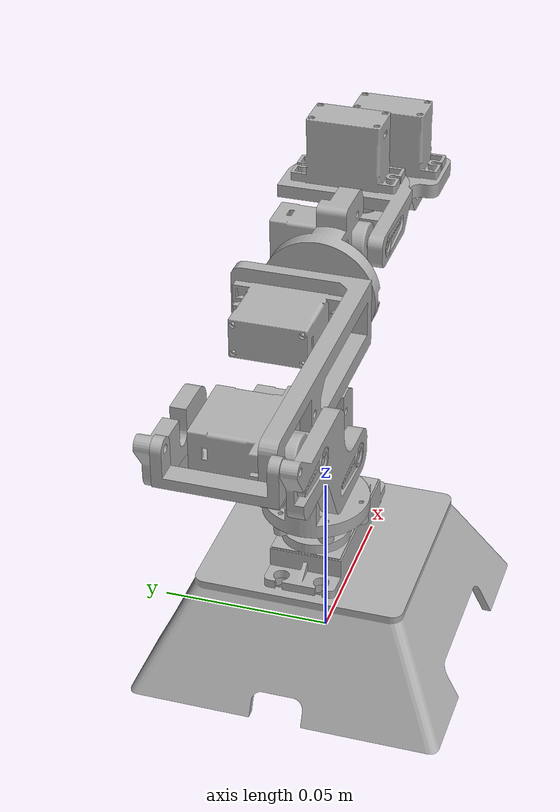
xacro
<?xml version="1.0" ?>
<robot name="serpens_urdf" xmlns:xacro="http://www.ros.org/wiki/xacro">

<xacro:include filename="$(find serpens_urdf_description)/urdf/materials.xacro" />
<xacro:include filename="$(find serpens_urdf_description)/urdf/serpens_urdf.trans" />
<xacro:include filename="$(find serpens_urdf_description)/urdf/serpens_urdf.gazebo" />
<link name="base_link">
  <inertial>
    <origin rpy="0 0 0" xyz="0.00027997054451526365 -0.00019064006265276712 0.01910383815728144"/>
    <mass value="0.20475393508704573"/>
    <inertia ixx="0.000171" ixy="-0.0" ixz="1e-06" iyy="0.000189" iyz="-0.0" izz="0.000318"/>
  </inertial>
  <visual>
    <origin rpy="0 0 0" xyz="0 0 0"/>
    <geometry>
      <mesh filename="package://serpens_urdf_description/meshes/base_link.stl" scale="0.001 0.001 0.001"/>
    </geometry>
    <material name="silver"/>
  </visual>
  <collision>
    <origin rpy="0 0 0" xyz="0 0 0"/>
    <geometry>
      <mesh filename="package://serpens_urdf_description/meshes/base_link.stl" scale="0.001 0.001 0.001"/>
    </geometry>
  </collision>
</link>

<link name="servo0_1">
  <inertial>
    <origin rpy="0 0 0" xyz="0.023817699282545974 0.005749900442354143 -0.007871453326593378"/>
    <mass value="0.2555130258740541"/>
    <inertia ixx="3.9e-05" ixy="0.0" ixz="1e-06" iyy="6.8e-05" iyz="-0.0" izz="4.6e-05"/>
  </inertial>
  <visual>
    <origin rpy="0 0 0" xyz="0.024173 0.005926 -0.0325"/>
    <geometry>
      <mesh filename="package://serpens_urdf_description/meshes/servo0_1.stl" scale="0.001 0.001 0.001"/>
    </geometry>
    <material name="silver"/>
  </visual>
  <collision>
    <origin rpy="0 0 0" xyz="0.024173 0.005926 -0.0325"/>
    <geometry>
      <mesh filename="package://serpens_urdf_description/meshes/servo0_1.stl" scale="0.001 0.001 0.001"/>
    </geometry>
  </collision>
</link>

<link name="arm_servo0_1">
  <inertial>
    <origin rpy="0 0 0" xyz="2.645961693498178e-07 -9.955764881182556e-08 0.0008643613928907903"/>
    <mass value="0.00700497380911204"/>
    <inertia ixx="0.0" ixy="0.0" ixz="0.0" iyy="0.0" iyz="0.0" izz="1e-06"/>
  </inertial>
  <visual>
    <origin rpy="0 0 0" xyz="0.010373 0.000176 -0.0482"/>
    <geometry>
      <mesh filename="package://serpens_urdf_description/meshes/arm_servo0_1.stl" scale="0.001 0.001 0.001"/>
    </geometry>
    <material name="silver"/>
  </visual>
  <collision>
    <origin rpy="0 0 0" xyz="0.010373 0.000176 -0.0482"/>
    <geometry>
      <mesh filename="package://serpens_urdf_description/meshes/arm_servo0_1.stl" scale="0.001 0.001 0.001"/>
    </geometry>
  </collision>
</link>

<link name="link1_1">
  <inertial>
    <origin rpy="0 0 0" xyz="-9.790643557111567e-05 0.016623975091317883 0.01144673390169567"/>
    <mass value="0.052371181806792864"/>
    <inertia ixx="9e-06" ixy="0.0" ixz="0.0" iyy="1e-05" iyz="-1e-06" izz="1.1e-05"/>
  </inertial>
  <visual>
    <origin rpy="0 0 0" xyz="0.010373 0.013276 -0.0505"/>
    <geometry>
      <mesh filename="package://serpens_urdf_description/meshes/link1_1.stl" scale="0.001 0.001 0.001"/>
    </geometry>
    <material name="silver"/>
  </visual>
  <collision>
    <origin rpy="0 0 0" xyz="0.010373 0.013276 -0.0505"/>
    <geometry>
      <mesh filename="package://serpens_urdf_description/meshes/link1_1.stl" scale="0.001 0.001 0.001"/>
    </geometry>
  </collision>
</link>

<link name="servo1_1">
  <inertial>
    <origin rpy="0 0 0" xyz="-0.01924973540421095 -0.009270639450617364 2.0469669471945284e-07"/>
    <mass value="0.00045126850039796834"/>
    <inertia ixx="0.0" ixy="-0.0" ixz="0.0" iyy="0.0" iyz="0.0" izz="0.0"/>
  </inertial>
  <visual>
    <origin rpy="0 0 0" xyz="-0.003527 0.000676 -0.0739"/>
    <geometry>
      <mesh filename="package://serpens_urdf_description/meshes/servo1_1.stl" scale="0.001 0.001 0.001"/>
    </geometry>
    <material name="silver"/>
  </visual>
  <collision>
    <origin rpy="0 0 0" xyz="-0.003527 0.000676 -0.0739"/>
    <geometry>
      <mesh filename="package://serpens_urdf_description/meshes/servo1_1.stl" scale="0.001 0.001 0.001"/>
    </geometry>
  </collision>
</link>

<link name="arm_servo1_1">
  <inertial>
    <origin rpy="0 0 0" xyz="-0.0039290744024541024 -0.0006862988025785107 -7.223509433662567e-07"/>
    <mass value="0.0016195799801192233"/>
    <inertia ixx="0.0" ixy="-0.0" ixz="-0.0" iyy="0.0" iyz="-0.0" izz="0.0"/>
  </inertial>
  <visual>
    <origin rpy="0 0 0" xyz="0.015723 0.011676 -0.0739"/>
    <geometry>
      <mesh filename="package://serpens_urdf_description/meshes/arm_servo1_1.stl" scale="0.001 0.001 0.001"/>
    </geometry>
    <material name="silver"/>
  </visual>
  <collision>
    <origin rpy="0 0 0" xyz="0.015723 0.011676 -0.0739"/>
    <geometry>
      <mesh filename="package://serpens_urdf_description/meshes/arm_servo1_1.stl" scale="0.001 0.001 0.001"/>
    </geometry>
  </collision>
</link>

<link name="servo2_1">
  <inertial>
    <origin rpy="0 0 0" xyz="2.645957888972039e-07 0.0017293602141066084 2.0469669428924142e-07"/>
    <mass value="0.00045126850039796834"/>
    <inertia ixx="0.0" ixy="-0.0" ixz="0.0" iyy="0.0" iyz="0.0" izz="0.0"/>
  </inertial>
  <visual>
    <origin rpy="0 0 0" xyz="0.048223 0.011676 -0.0939"/>
    <geometry>
      <mesh filename="package://serpens_urdf_description/meshes/servo2_1.stl" scale="0.001 0.001 0.001"/>
    </geometry>
    <material name="silver"/>
  </visual>
  <collision>
    <origin rpy="0 0 0" xyz="0.048223 0.011676 -0.0939"/>
    <geometry>
      <mesh filename="package://serpens_urdf_description/meshes/servo2_1.stl" scale="0.001 0.001 0.001"/>
    </geometry>
  </collision>
</link>

<link name="link3_1">
  <inertial>
    <origin rpy="0 0 0" xyz="0.06536869760284404 -0.07603706493312537 -0.000654465729437087"/>
    <mass value="0.052330263297845014"/>
    <inertia ixx="9e-06" ixy="-8e-06" ixz="-0.0" iyy="4.4e-05" iyz="-0.0" izz="4.7e-05"/>
  </inertial>
  <visual>
    <origin rpy="0 0 0" xyz="0.07282 -0.077879 -0.094576"/>
    <geometry>
      <mesh filename="package://serpens_urdf_description/meshes/link3_1.stl" scale="0.001 0.001 0.001"/>
    </geometry>
    <material name="silver"/>
  </visual>
  <collision>
    <origin rpy="0 0 0" xyz="0.07282 -0.077879 -0.094576"/>
    <geometry>
      <mesh filename="package://serpens_urdf_description/meshes/link3_1.stl" scale="0.001 0.001 0.001"/>
    </geometry>
  </collision>
</link>

<link name="servo3_1">
  <inertial>
    <origin rpy="0 0 0" xyz="0.00927080416384779 0.008499899885857554 2.050532693920193e-07"/>
    <mass value="0.00045126850039796834"/>
    <inertia ixx="0.0" ixy="0.0" ixz="0.0" iyy="0.0" iyz="0.0" izz="0.0"/>
  </inertial>
  <visual>
    <origin rpy="0 0 0" xyz="-0.020777 -0.002824 -0.0939"/>
    <geometry>
      <mesh filename="package://serpens_urdf_description/meshes/servo3_1.stl" scale="0.001 0.001 0.001"/>
    </geometry>
    <material name="silver"/>
  </visual>
  <collision>
    <origin rpy="0 0 0" xyz="-0.020777 -0.002824 -0.0939"/>
    <geometry>
      <mesh filename="package://serpens_urdf_description/meshes/servo3_1.stl" scale="0.001 0.001 0.001"/>
    </geometry>
  </collision>
</link>

<link name="arm_servo3_1">
  <inertial>
    <origin rpy="0 0 0" xyz="0.0006864635158244023 -0.0039294391123699856 -7.220197437290965e-07"/>
    <mass value="0.0016195799801192233"/>
    <inertia ixx="0.0" ixy="0.0" ixz="0.0" iyy="0.0" iyz="-0.0" izz="0.0"/>
  </inertial>
  <visual>
    <origin rpy="0 0 0" xyz="-0.031777 -0.011324 -0.0939"/>
    <geometry>
      <mesh filename="package://serpens_urdf_description/meshes/arm_servo3_1.stl" scale="0.001 0.001 0.001"/>
    </geometry>
    <material name="silver"/>
  </visual>
  <collision>
    <origin rpy="0 0 0" xyz="-0.031777 -0.011324 -0.0939"/>
    <geometry>
      <mesh filename="package://serpens_urdf_description/meshes/arm_servo3_1.stl" scale="0.001 0.001 0.001"/>
    </geometry>
  </collision>
</link>

<link name="link4_1">
  <inertial>
    <origin rpy="0 0 0" xyz="0.0056804347817446185 -7.934130093111003e-06 1.54334066774231e-05"/>
    <mass value="0.05614897602426228"/>
    <inertia ixx="1e-05" ixy="0.0" ixz="-0.0" iyy="1.2e-05" iyz="0.0" izz="7e-06"/>
  </inertial>
  <visual>
    <origin rpy="0 0 0" xyz="-0.031777 -0.011324 -0.0939"/>
    <geometry>
      <mesh filename="package://serpens_urdf_description/meshes/link4_1.stl" scale="0.001 0.001 0.001"/>
    </geometry>
    <material name="silver"/>
  </visual>
  <collision>
    <origin rpy="0 0 0" xyz="-0.031777 -0.011324 -0.0939"/>
    <geometry>
      <mesh filename="package://serpens_urdf_description/meshes/link4_1.stl" scale="0.001 0.001 0.001"/>
    </geometry>
  </collision>
</link>

<link name="servo4_1">
  <inertial>
    <origin rpy="0 0 0" xyz="2.6339035470029915e-07 -0.009270492412655196 0.019250114442996666"/>
    <mass value="0.00045126850039796834"/>
    <inertia ixx="0.0" ixy="0.0" ixz="-0.0" iyy="0.0" iyz="0.0" izz="0.0"/>
  </inertial>
  <visual>
    <origin rpy="0 0 0" xyz="-0.053677 -0.010835 -0.080045"/>
    <geometry>
      <mesh filename="package://serpens_urdf_description/meshes/servo4_1.stl" scale="0.001 0.001 0.001"/>
    </geometry>
    <material name="silver"/>
  </visual>
  <collision>
    <origin rpy="0 0 0" xyz="-0.053677 -0.010835 -0.080045"/>
    <geometry>
      <mesh filename="package://serpens_urdf_description/meshes/servo4_1.stl" scale="0.001 0.001 0.001"/>
    </geometry>
  </collision>
</link>

<link name="arm_servo4_1">
  <inertial>
    <origin rpy="0 0 0" xyz="0.00392960234841027 -0.000686151830518091 1.041409335461596e-06"/>
    <mass value="0.0016195799801192233"/>
    <inertia ixx="0.0" ixy="0.0" ixz="-0.0" iyy="0.0" iyz="0.0" izz="0.0"/>
  </inertial>
  <visual>
    <origin rpy="0 0 0" xyz="-0.053677 0.000165 -0.099295"/>
    <geometry>
      <mesh filename="package://serpens_urdf_description/meshes/arm_servo4_1.stl" scale="0.001 0.001 0.001"/>
    </geometry>
    <material name="silver"/>
  </visual>
  <collision>
    <origin rpy="0 0 0" xyz="-0.053677 0.000165 -0.099295"/>
    <geometry>
      <mesh filename="package://serpens_urdf_description/meshes/arm_servo4_1.stl" scale="0.001 0.001 0.001"/>
    </geometry>
  </collision>
</link>

<link name="link5_1">
  <inertial>
    <origin rpy="0 0 0" xyz="0.020481687369747995 0.011884026774419732 0.002024324960307536"/>
    <mass value="0.020068502995894605"/>
    <inertia ixx="4e-06" ixy="-1e-06" ixz="-0.0" iyy="3e-06" iyz="-0.0" izz="6e-06"/>
  </inertial>
  <visual>
    <origin rpy="0 0 0" xyz="-0.053677 0.000165 -0.099295"/>
    <geometry>
      <mesh filename="package://serpens_urdf_description/meshes/link5_1.stl" scale="0.001 0.001 0.001"/>
    </geometry>
    <material name="silver"/>
  </visual>
  <collision>
    <origin rpy="0 0 0" xyz="-0.053677 0.000165 -0.099295"/>
    <geometry>
      <mesh filename="package://serpens_urdf_description/meshes/link5_1.stl" scale="0.001 0.001 0.001"/>
    </geometry>
  </collision>
</link>

<link name="servo5_1">
  <inertial>
    <origin rpy="0 0 0" xyz="2.635709100834438e-07 0.008500047815705996 -0.009270424944507055"/>
    <mass value="0.00045126850039796834"/>
    <inertia ixx="0.0" ixy="0.0" ixz="0.0" iyy="0.0" iyz="-0.0" izz="0.0"/>
  </inertial>
  <visual>
    <origin rpy="0 0 0" xyz="-0.081177 -0.003835 -0.104295"/>
    <geometry>
      <mesh filename="package://serpens_urdf_description/meshes/servo5_1.stl" scale="0.001 0.001 0.001"/>
    </geometry>
    <material name="silver"/>
  </visual>
  <collision>
    <origin rpy="0 0 0" xyz="-0.081177 -0.003835 -0.104295"/>
    <geometry>
      <mesh filename="package://serpens_urdf_description/meshes/servo5_1.stl" scale="0.001 0.001 0.001"/>
    </geometry>
  </collision>
</link>

<link name="arm_servo_5_1">
  <inertial>
    <origin rpy="0 0 0" xyz="0.003929602569445717 -8.792165034684357e-07 -0.0006860842964992453"/>
    <mass value="0.0016195799801192233"/>
    <inertia ixx="0.0" ixy="0.0" ixz="0.0" iyy="0.0" iyz="-0.0" izz="0.0"/>
  </inertial>
  <visual>
    <origin rpy="0 0 0" xyz="-0.081177 -0.012335 -0.093295"/>
    <geometry>
      <mesh filename="package://serpens_urdf_description/meshes/arm_servo_5_1.stl" scale="0.001 0.001 0.001"/>
    </geometry>
    <material name="silver"/>
  </visual>
  <collision>
    <origin rpy="0 0 0" xyz="-0.081177 -0.012335 -0.093295"/>
    <geometry>
      <mesh filename="package://serpens_urdf_description/meshes/arm_servo_5_1.stl" scale="0.001 0.001 0.001"/>
    </geometry>
  </collision>
</link>

<link name="tool_link_1">
  <inertial>
    <origin rpy="0 0 0" xyz="0.01780176309287465 6.511303609289115e-05 -0.00020166685008318752"/>
    <mass value="0.029560890763662143"/>
    <inertia ixx="3e-06" ixy="0.0" ixz="0.0" iyy="6e-06" iyz="0.0" izz="8e-06"/>
  </inertial>
  <visual>
    <origin rpy="0 0 0" xyz="-0.081177 -0.012335 -0.093295"/>
    <geometry>
      <mesh filename="package://serpens_urdf_description/meshes/tool_link_1.stl" scale="0.001 0.001 0.001"/>
    </geometry>
    <material name="silver"/>
  </visual>
  <collision>
    <origin rpy="0 0 0" xyz="-0.081177 -0.012335 -0.093295"/>
    <geometry>
      <mesh filename="package://serpens_urdf_description/meshes/tool_link_1.stl" scale="0.001 0.001 0.001"/>
    </geometry>
  </collision>
</link>

<link name="servo_tool_1">
  <inertial>
    <origin rpy="0 0 0" xyz="-9.256212421537846e-09 0.019250047468511194 -0.009270423806164524"/>
    <mass value="0.00045126850039796834"/>
    <inertia ixx="0.0" ixy="0.0" ixz="0.0" iyy="0.0" iyz="-0.0" izz="0.0"/>
  </inertial>
  <visual>
    <origin rpy="0 0 0" xyz="-0.110925 0.001665 -0.095295"/>
    <geometry>
      <mesh filename="package://serpens_urdf_description/meshes/servo_tool_1.stl" scale="0.001 0.001 0.001"/>
    </geometry>
    <material name="silver"/>
  </visual>
  <collision>
    <origin rpy="0 0 0" xyz="-0.110925 0.001665 -0.095295"/>
    <geometry>
      <mesh filename="package://serpens_urdf_description/meshes/servo_tool_1.stl" scale="0.001 0.001 0.001"/>
    </geometry>
  </collision>
</link>

<link name="arm_servo_tool_1">
  <inertial>
    <origin rpy="0 0 0" xyz="0.003929329742322976 -8.795643143579002e-07 -0.0006860831581567695"/>
    <mass value="0.0016195799801192233"/>
    <inertia ixx="0.0" ixy="0.0" ixz="0.0" iyy="0.0" iyz="-0.0" izz="0.0"/>
  </inertial>
  <visual>
    <origin rpy="0 0 0" xyz="-0.110925 -0.017585 -0.084295"/>
    <geometry>
      <mesh filename="package://serpens_urdf_description/meshes/arm_servo_tool_1.stl" scale="0.001 0.001 0.001"/>
    </geometry>
    <material name="silver"/>
  </visual>
  <collision>
    <origin rpy="0 0 0" xyz="-0.110925 -0.017585 -0.084295"/>
    <geometry>
      <mesh filename="package://serpens_urdf_description/meshes/arm_servo_tool_1.stl" scale="0.001 0.001 0.001"/>
    </geometry>
  </collision>
</link>

<link name="eef_1">
  <inertial>
    <origin rpy="0 0 0" xyz="0.008030113259992464 0.00017606001763305432 -0.005190207434945443"/>
    <mass value="0.0042424747703085006"/>
    <inertia ixx="0.0" ixy="-0.0" ixz="0.0" iyy="0.0" iyz="0.0" izz="0.0"/>
  </inertial>
  <visual>
    <origin rpy="0 0 0" xyz="-0.100925 -0.006335 -0.090795"/>
    <geometry>
      <mesh filename="package://serpens_urdf_description/meshes/eef_1.stl" scale="0.001 0.001 0.001"/>
    </geometry>
    <material name="silver"/>
  </visual>
  <collision>
    <origin rpy="0 0 0" xyz="-0.100925 -0.006335 -0.090795"/>
    <geometry>
      <mesh filename="package://serpens_urdf_description/meshes/eef_1.stl" scale="0.001 0.001 0.001"/>
    </geometry>
  </collision>
</link>

<link name="link2_1">
  <inertial>
    <origin rpy="0 0 0" xyz="-0.023625589654931854 -0.00015143117739204424 0.011801987665074148"/>
    <mass value="0.03060812881042512"/>
    <inertia ixx="3e-06" ixy="0.0" ixz="3e-06" iyy="1e-05" iyz="0.0" izz="7e-06"/>
  </inertial>
  <visual>
    <origin rpy="0 0 0" xyz="0.015723 0.011676 -0.0739"/>
    <geometry>
      <mesh filename="package://serpens_urdf_description/meshes/link2_1.stl" scale="0.001 0.001 0.001"/>
    </geometry>
    <material name="silver"/>
  </visual>
  <collision>
    <origin rpy="0 0 0" xyz="0.015723 0.011676 -0.0739"/>
    <geometry>
      <mesh filename="package://serpens_urdf_description/meshes/link2_1.stl" scale="0.001 0.001 0.001"/>
    </geometry>
  </collision>
</link>

<link name="arm_servo2_1">
  <inertial>
    <origin rpy="0 0 0" xyz="-0.00392907440245404 -0.0006862991378545642 -7.223509438936127e-07"/>
    <mass value="0.0016195799801192233"/>
    <inertia ixx="0.0" ixy="-0.0" ixz="-0.0" iyy="0.0" iyz="-0.0" izz="0.0"/>
  </inertial>
  <visual>
    <origin rpy="0 0 0" xyz="0.048223 0.011676 -0.0939"/>
    <geometry>
      <mesh filename="package://serpens_urdf_description/meshes/arm_servo2_1.stl" scale="0.001 0.001 0.001"/>
    </geometry>
    <material name="silver"/>
  </visual>
  <collision>
    <origin rpy="0 0 0" xyz="0.048223 0.011676 -0.0939"/>
    <geometry>
      <mesh filename="package://serpens_urdf_description/meshes/arm_servo2_1.stl" scale="0.001 0.001 0.001"/>
    </geometry>
  </collision>
</link>

<link name="link3_2_1">
  <inertial>
    <origin rpy="0 0 0" xyz="1.4333935584587287e-06 0.016499900772567994 -0.00644320390643148"/>
    <mass value="0.007090930359163667"/>
    <inertia ixx="1e-06" ixy="-0.0" ixz="0.0" iyy="0.0" iyz="-0.0" izz="1e-06"/>
  </inertial>
  <visual>
    <origin rpy="0 0 0" xyz="0.068223 0.009676 -0.1039"/>
    <geometry>
      <mesh filename="package://serpens_urdf_description/meshes/link3_2_1.stl" scale="0.001 0.001 0.001"/>
    </geometry>
    <material name="silver"/>
  </visual>
  <collision>
    <origin rpy="0 0 0" xyz="0.068223 0.009676 -0.1039"/>
    <geometry>
      <mesh filename="package://serpens_urdf_description/meshes/link3_2_1.stl" scale="0.001 0.001 0.001"/>
    </geometry>
  </collision>
</link>

<link name="link2_pair_1">
  <inertial>
    <origin rpy="0 0 0" xyz="0.028812952511745295 0.002249900962215688 -0.017756131216635412"/>
    <mass value="0.03005223787841536"/>
    <inertia ixx="3e-06" ixy="-0.0" ixz="3e-06" iyy="1e-05" iyz="0.0" izz="7e-06"/>
  </inertial>
  <visual>
    <origin rpy="0 0 0" xyz="0.068223 -0.023324 -0.1039"/>
    <geometry>
      <mesh filename="package://serpens_urdf_description/meshes/link2_pair_1.stl" scale="0.001 0.001 0.001"/>
    </geometry>
    <material name="silver"/>
  </visual>
  <collision>
    <origin rpy="0 0 0" xyz="0.068223 -0.023324 -0.1039"/>
    <geometry>
      <mesh filename="package://serpens_urdf_description/meshes/link2_pair_1.stl" scale="0.001 0.001 0.001"/>
    </geometry>
  </collision>
</link>

<joint name="f1" type="fixed">
  <origin rpy="0 0 0" xyz="-0.024173 -0.005926 0.0325"/>
  <parent link="base_link"/>
  <child link="servo0_1"/>
</joint>

<joint name="joint0" type="revolute">
  <origin rpy="0 0 0" xyz="0.0138 0.00575 0.0157"/>
  <parent link="servo0_1"/>
  <child link="arm_servo0_1"/>
  <axis xyz="-0.0 0.0 1.0"/>
  <limit effort="100" lower="-1.570796" upper="1.570796" velocity="100"/>
</joint>

<joint name="f2" type="fixed">
  <origin rpy="0 0 0" xyz="0.0 -0.0131 0.0023"/>
  <parent link="arm_servo0_1"/>
  <child link="link1_1"/>
</joint>

<joint name="f3" type="fixed">
  <origin rpy="0 0 0" xyz="0.0139 0.0126 0.0234"/>
  <parent link="link1_1"/>
  <child link="servo1_1"/>
</joint>

<joint name="joint1" type="revolute">
  <origin rpy="0 0 0" xyz="-0.01925 -0.011 0.0"/>
  <parent link="servo1_1"/>
  <child link="arm_servo1_1"/>
  <axis xyz="-0.0 -1.0 -0.0"/>
  <limit effort="100" lower="-1.570796" upper="1.570796" velocity="100"/>
</joint>

<joint name="joint2" type="revolute">
  <origin rpy="0 0 0" xyz="0.0 0.0 0.0"/>
  <parent link="arm_servo2_1"/>
  <child link="servo2_1"/>
  <axis xyz="-0.0 -1.0 -0.0"/>
  <limit effort="100" lower="0.0" upper="3.141593" velocity="100"/>
</joint>

<joint name="f7" type="fixed">
  <origin rpy="0 0 0" xyz="-0.024597 0.089555 0.000676"/>
  <parent link="servo2_1"/>
  <child link="link3_1"/>
</joint>

<joint name="f8" type="fixed">
  <origin rpy="0 0 0" xyz="0.093597 -0.075055 -0.000676"/>
  <parent link="link3_1"/>
  <child link="servo3_1"/>
</joint>

<joint name="joint3" type="revolute">
  <origin rpy="0 0 0" xyz="0.011 0.0085 0.0"/>
  <parent link="servo3_1"/>
  <child link="arm_servo3_1"/>
  <axis xyz="1.0 0.0 -0.0"/>
  <limit effort="100" lower="-1.570796" upper="1.570796" velocity="100"/>
</joint>

<joint name="f9" type="fixed">
  <origin rpy="0 0 0" xyz="0.0 0.0 0.0"/>
  <parent link="arm_servo3_1"/>
  <child link="link4_1"/>
</joint>

<joint name="f10" type="fixed">
  <origin rpy="0 0 0" xyz="0.0219 -0.000489 -0.013855"/>
  <parent link="link4_1"/>
  <child link="servo4_1"/>
</joint>

<joint name="joint4" type="revolute">
  <origin rpy="0 0 0" xyz="0.0 -0.011 0.01925"/>
  <parent link="servo4_1"/>
  <child link="arm_servo4_1"/>
  <axis xyz="-0.0 -1.0 -0.0"/>
  <limit effort="100" lower="-1.570796" upper="1.570796" velocity="100"/>
</joint>

<joint name="f11" type="fixed">
  <origin rpy="0 0 0" xyz="0.0 0.0 0.0"/>
  <parent link="arm_servo4_1"/>
  <child link="link5_1"/>
</joint>

<joint name="f12" type="fixed">
  <origin rpy="0 0 0" xyz="0.0275 0.004 0.005"/>
  <parent link="link5_1"/>
  <child link="servo5_1"/>
</joint>

<joint name="joint5" type="revolute">
  <origin rpy="0 0 0" xyz="0.0 0.0085 -0.011"/>
  <parent link="servo5_1"/>
  <child link="arm_servo_5_1"/>
  <axis xyz="-0.0 0.0 -1.0"/>
  <limit effort="100" lower="-1.570796" upper="1.570796" velocity="100"/>
</joint>

<joint name="f13" type="fixed">
  <origin rpy="0 0 0" xyz="0.0 0.0 0.0"/>
  <parent link="arm_servo_5_1"/>
  <child link="tool_link_1"/>
</joint>

<joint name="f14" type="fixed">
  <origin rpy="0 0 0" xyz="0.029748 -0.014 0.002"/>
  <parent link="tool_link_1"/>
  <child link="servo_tool_1"/>
</joint>

<joint name="joint6" type="revolute">
  <origin rpy="0 0 0" xyz="0.0 0.01925 -0.011"/>
  <parent link="servo_tool_1"/>
  <child link="arm_servo_tool_1"/>
  <axis xyz="-0.0 0.0 -1.0"/>
  <limit effort="100" lower="1.570796" upper="4.712389" velocity="100"/>
</joint>

<joint name="f15" type="fixed">
  <origin rpy="0 0 0" xyz="0.019748 -0.006 -0.0025"/>
  <parent link="tool_link_1"/>
  <child link="eef_1"/>
</joint>

<joint name="f16" type="fixed">
  <origin rpy="0 0 0" xyz="0.0 0.0 0.0"/>
  <parent link="arm_servo1_1"/>
  <child link="link2_1"/>
</joint>

<joint name="f17" type="fixed">
  <origin rpy="0 0 0" xyz="-0.0325 0.0 0.02"/>
  <parent link="link2_1"/>
  <child link="arm_servo2_1"/>
</joint>

<joint name="f18" type="fixed">
  <origin rpy="0 0 0" xyz="-0.0525 0.002 0.03"/>
  <parent link="link2_1"/>
  <child link="link3_2_1"/>
</joint>

<joint name="f19" type="fixed">
  <origin rpy="0 0 0" xyz="0.0 0.033 0.0"/>
  <parent link="link3_2_1"/>
  <child link="link2_pair_1"/>
</joint>

</robot>

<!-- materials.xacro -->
<robot name="serpens_urdf" xmlns:xacro="http://www.ros.org/wiki/xacro" >

<material name="silver">
  <color rgba="0.700 0.700 0.700 1.000"/>
</material>

</robot>

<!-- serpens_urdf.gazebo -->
<robot name="serpens_urdf" xmlns:xacro="http://www.ros.org/wiki/xacro" >

<xacro:property name="body_color" value="Gazebo/Silver" />

<gazebo>
  <plugin filename="libgazebo_ros_control.so" name="control"/>
</gazebo>
<gazebo reference="base_link">
  <material>${body_color}</material>
  <mu1>0.2</mu1>
  <mu2>0.2</mu2>
  <selfCollide>true</selfCollide>
  <gravity>true</gravity>
</gazebo>

<gazebo reference="servo0_1">
  <material>${body_color}</material>
  <mu1>0.2</mu1>
  <mu2>0.2</mu2>
  <selfCollide>true</selfCollide>
</gazebo>

<gazebo reference="arm_servo0_1">
  <material>${body_color}</material>
  <mu1>0.2</mu1>
  <mu2>0.2</mu2>
  <selfCollide>true</selfCollide>
</gazebo>

<gazebo reference="link1_1">
  <material>${body_color}</material>
  <mu1>0.2</mu1>
  <mu2>0.2</mu2>
  <selfCollide>true</selfCollide>
</gazebo>

<gazebo reference="servo1_1">
  <material>${body_color}</material>
  <mu1>0.2</mu1>
  <mu2>0.2</mu2>
  <selfCollide>true</selfCollide>
</gazebo>

<gazebo reference="arm_servo1_1">
  <material>${body_color}</material>
  <mu1>0.2</mu1>
  <mu2>0.2</mu2>
  <selfCollide>true</selfCollide>
</gazebo>

<gazebo reference="servo2_1">
  <material>${body_color}</material>
  <mu1>0.2</mu1>
  <mu2>0.2</mu2>
  <selfCollide>true</selfCollide>
</gazebo>

<gazebo reference="link3_1">
  <material>${body_color}</material>
  <mu1>0.2</mu1>
  <mu2>0.2</mu2>
  <selfCollide>true</selfCollide>
</gazebo>

<gazebo reference="servo3_1">
  <material>${body_color}</material>
  <mu1>0.2</mu1>
  <mu2>0.2</mu2>
  <selfCollide>true</selfCollide>
</gazebo>

<gazebo reference="arm_servo3_1">
  <material>${body_color}</material>
  <mu1>0.2</mu1>
  <mu2>0.2</mu2>
  <selfCollide>true</selfCollide>
</gazebo>

<gazebo reference="link4_1">
  <material>${body_color}</material>
  <mu1>0.2</mu1>
  <mu2>0.2</mu2>
  <selfCollide>true</selfCollide>
</gazebo>

<gazebo reference="servo4_1">
  <material>${body_color}</material>
  <mu1>0.2</mu1>
  <mu2>0.2</mu2>
  <selfCollide>true</selfCollide>
</gazebo>

<gazebo reference="arm_servo4_1">
  <material>${body_color}</material>
  <mu1>0.2</mu1>
  <mu2>0.2</mu2>
  <selfCollide>true</selfCollide>
</gazebo>

<gazebo reference="link5_1">
  <material>${body_color}</material>
  <mu1>0.2</mu1>
  <mu2>0.2</mu2>
  <selfCollide>true</selfCollide>
</gazebo>

<gazebo reference="servo5_1">
  <material>${body_color}</material>
  <mu1>0.2</mu1>
  <mu2>0.2</mu2>
  <selfCollide>true</selfCollide>
</gazebo>

<gazebo reference="arm_servo_5_1">
  <material>${body_color}</material>
  <mu1>0.2</mu1>
  <mu2>0.2</mu2>
  <selfCollide>true</selfCollide>
</gazebo>

<gazebo reference="tool_link_1">
  <material>${body_color}</material>
  <mu1>0.2</mu1>
  <mu2>0.2</mu2>
  <selfCollide>true</selfCollide>
</gazebo>

<gazebo reference="servo_tool_1">
  <material>${body_color}</material>
  <mu1>0.2</mu1>
  <mu2>0.2</mu2>
  <selfCollide>true</selfCollide>
</gazebo>

<gazebo reference="arm_servo_tool_1">
  <material>${body_color}</material>
  <mu1>0.2</mu1>
  <mu2>0.2</mu2>
  <selfCollide>true</selfCollide>
</gazebo>

<gazebo reference="eef_1">
  <material>${body_color}</material>
  <mu1>0.2</mu1>
  <mu2>0.2</mu2>
  <selfCollide>true</selfCollide>
</gazebo>

<gazebo reference="link2_1">
  <material>${body_color}</material>
  <mu1>0.2</mu1>
  <mu2>0.2</mu2>
  <selfCollide>true</selfCollide>
</gazebo>

<gazebo reference="arm_servo2_1">
  <material>${body_color}</material>
  <mu1>0.2</mu1>
  <mu2>0.2</mu2>
  <selfCollide>true</selfCollide>
</gazebo>

<gazebo reference="link3_2_1">
  <material>${body_color}</material>
  <mu1>0.2</mu1>
  <mu2>0.2</mu2>
  <selfCollide>true</selfCollide>
</gazebo>

</robot>
